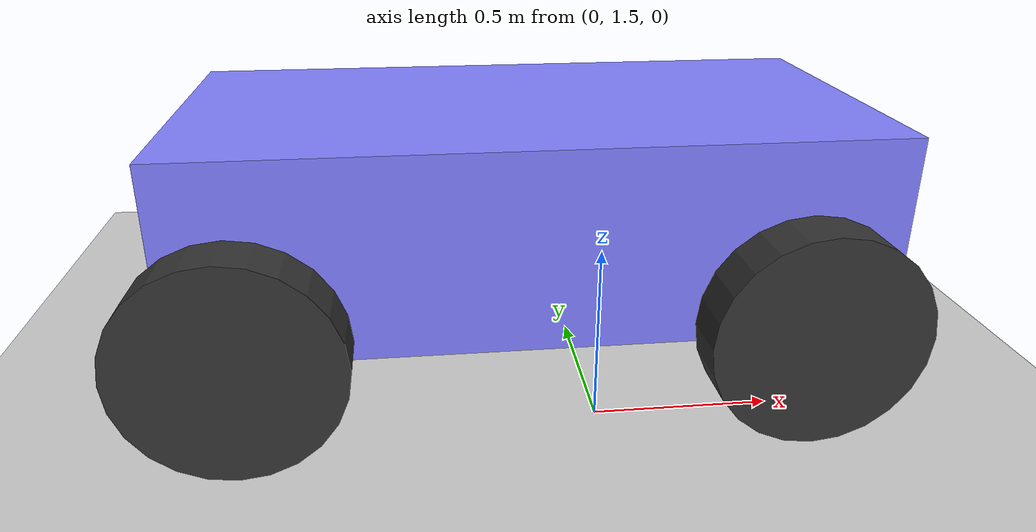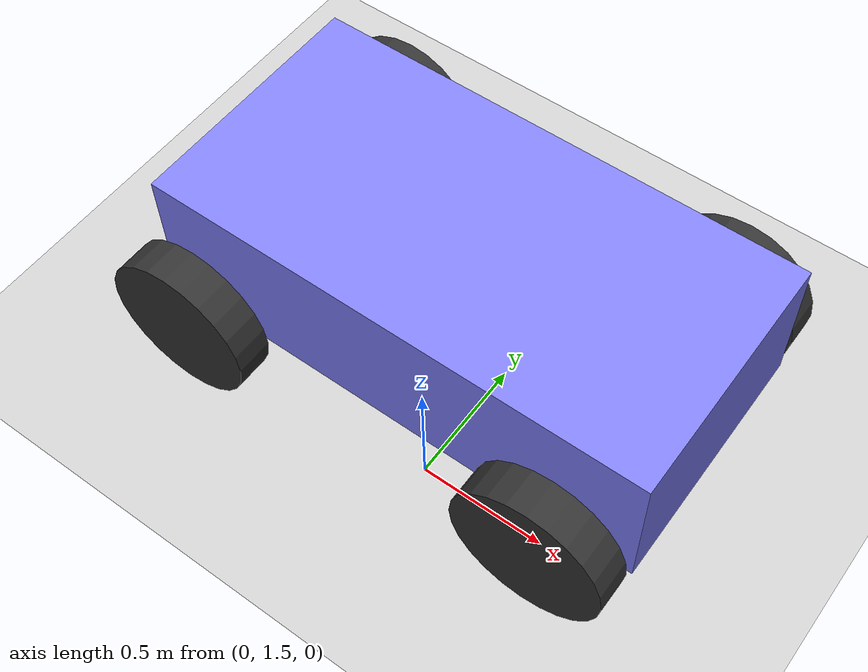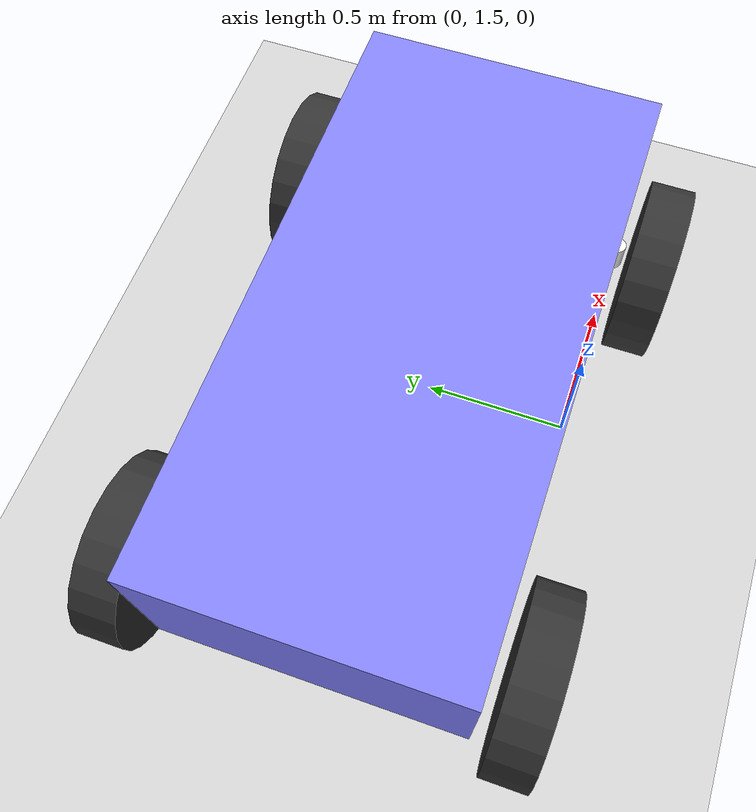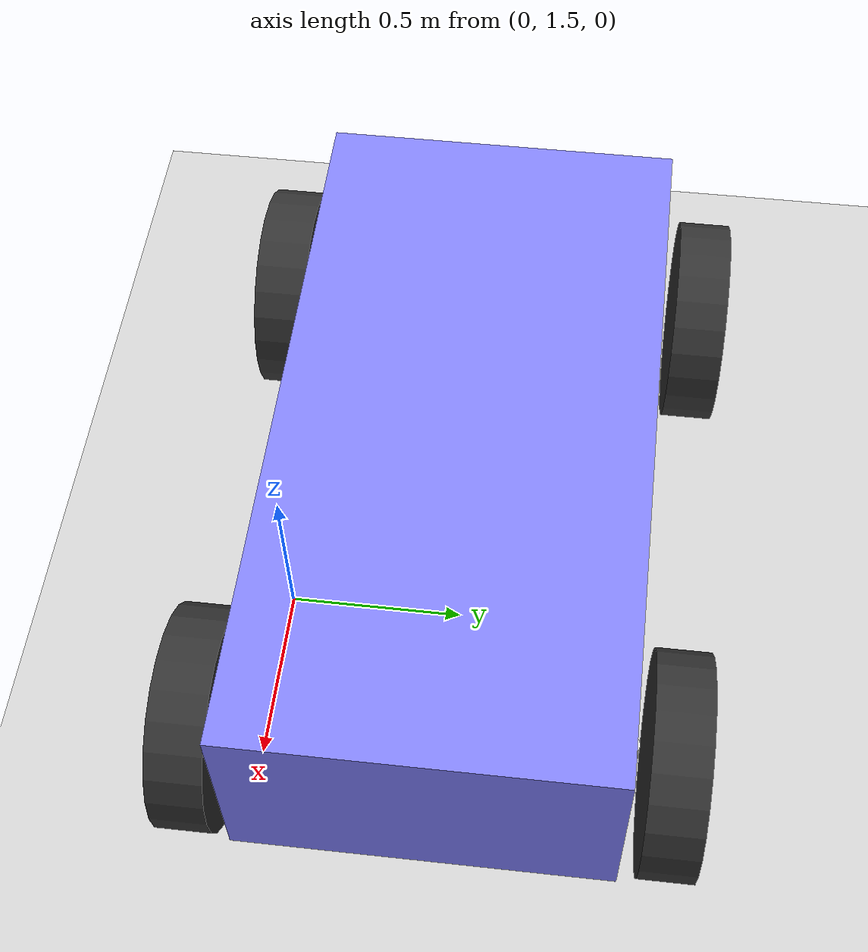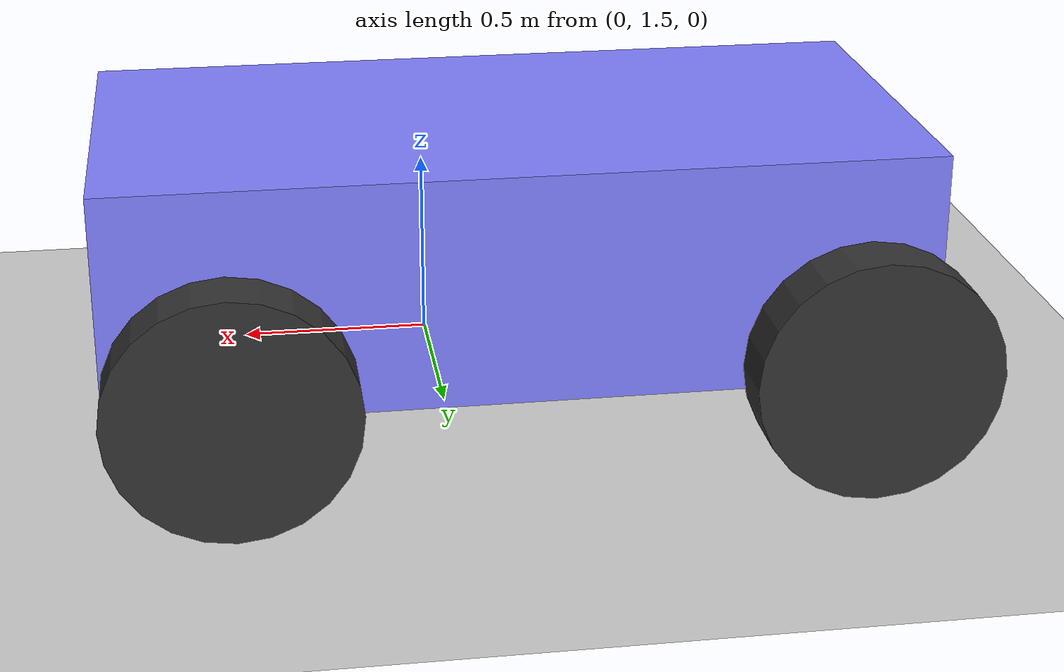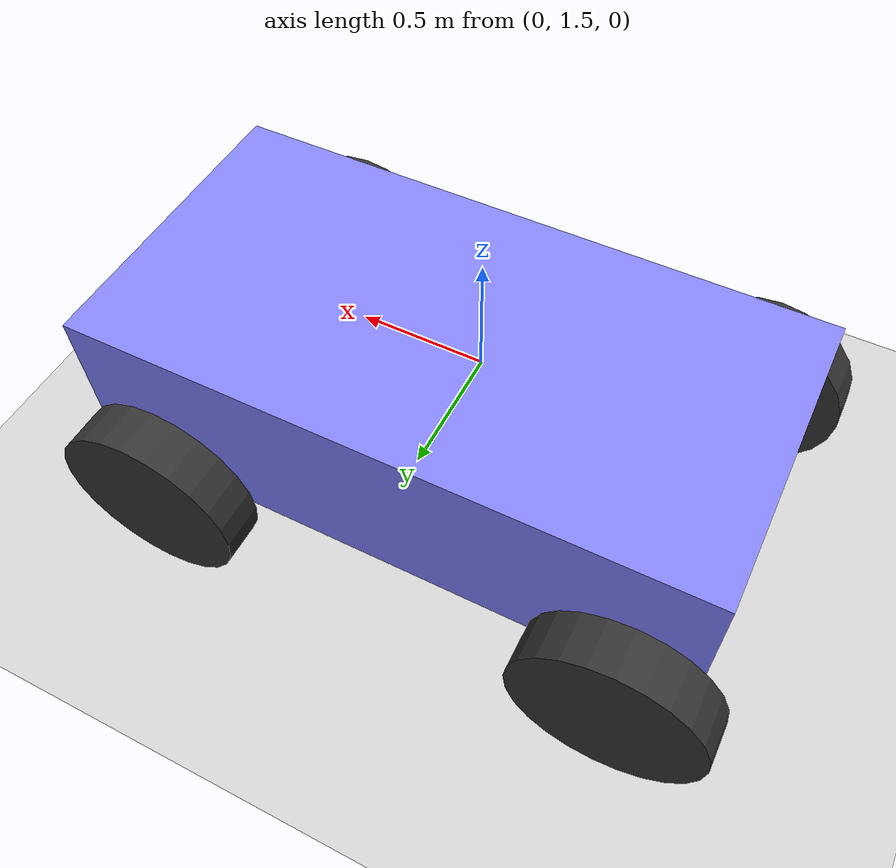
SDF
<sdf version='1.10'>
  <world name='ackermann_steering'>
    <physics name='1ms' type='ignored'>
      <max_step_size>0.001</max_step_size>
      <real_time_factor>1</real_time_factor>
      <real_time_update_rate>1000</real_time_update_rate>
    </physics>
    <plugin name='gz::sim::systems::Physics' filename='gz-sim-physics-system'/>
    <plugin name='gz::sim::systems::UserCommands' filename='gz-sim-user-commands-system'/>
    <plugin name='gz::sim::systems::SceneBroadcaster' filename='gz-sim-scene-broadcaster-system'/>
    <gravity>0 0 -9.8000000000000007</gravity>
    <magnetic_field>5.5644999999999998e-06 2.2875799999999999e-05 -4.2388400000000002e-05</magnetic_field>
    <atmosphere type='adiabatic'/>
    <scene>
      <ambient>0.400000006 0.400000006 0.400000006 1</ambient>
      <background>0.699999988 0.699999988 0.699999988 1</background>
      <shadows>true</shadows>
    </scene>
    <model name='ground_plane'>
      <static>true</static>
      <link name='link'>
        <collision name='collision'>
          <geometry>
            <plane>
              <normal>0 0 1</normal>
              <size>100 100</size>
            </plane>
          </geometry>
          <surface>
            <friction>
              <ode>
                <mu>50</mu>
              </ode>
              <bullet>
                <friction>1</friction>
                <rolling_friction>0.10000000000000001</rolling_friction>
              </bullet>
            </friction>
            <bounce/>
            <contact/>
          </surface>
        </collision>
        <visual name='visual'>
          <geometry>
            <plane>
              <normal>0 0 1</normal>
              <size>100 100</size>
            </plane>
          </geometry>
          <material>
            <ambient>0.800000012 0.800000012 0.800000012 1</ambient>
            <diffuse>0.800000012 0.800000012 0.800000012 1</diffuse>
            <specular>0.800000012 0.800000012 0.800000012 1</specular>
          </material>
        </visual>
        <pose>0 0 0 0 0 0</pose>
        <inertial>
          <pose>0 0 0 0 0 0</pose>
          <mass>1</mass>
          <inertia>
            <ixx>1</ixx>
            <ixy>0</ixy>
            <ixz>0</ixz>
            <iyy>1</iyy>
            <iyz>0</iyz>
            <izz>1</izz>
          </inertia>
        </inertial>
        <enable_wind>false</enable_wind>
      </link>
      <pose>0 0 0 0 0 0</pose>
      <self_collide>false</self_collide>
    </model>
    <model name='vehicle_blue'>
      <pose>8.7566537354533125e-11 2.0000000001634253 0.3250071890159123 -5.0518222677781699e-10 3.1007408737803522e-10 -5.1850145662276096e-12</pose>
      <link name='chassis'>
        <pose>-0.15142700000000001 0 0.17499999999999999 0 0 0</pose>
        <inertial>
          <mass>1.14395</mass>
          <inertia>
            <ixx>0.126164</ixx>
            <ixy>0</ixy>
            <ixz>0</ixz>
            <iyy>0.41651899999999997</iyy>
            <iyz>0</iyz>
            <izz>0.481014</izz>
          </inertia>
          <pose>0 0 0 0 0 0</pose>
        </inertial>
        <visual name='visual'>
          <geometry>
            <box>
              <size>2.0114200000000002 1 0.56872599999999995</size>
            </box>
          </geometry>
          <material>
            <ambient>0.5 0.5 1 1</ambient>
            <diffuse>0.5 0.5 1 1</diffuse>
            <specular>0 0 1 1</specular>
          </material>
        </visual>
        <collision name='collision'>
          <geometry>
            <box>
              <size>2.0114200000000002 1 0.56872599999999995</size>
            </box>
          </geometry>
          <surface>
            <friction>
              <ode/>
            </friction>
            <bounce/>
            <contact/>
          </surface>
        </collision>
        <enable_wind>false</enable_wind>
      </link>
      <link name='front_left_wheel'>
        <pose>0.55428299994665509 0.6250290000000005 -0.025000000000000022 -1.5706999999999995 -9.145556648555931e-15 4.2666024538867574e-10</pose>
        <inertial>
          <mass>2</mass>
          <inertia>
            <ixx>0.14583299999999999</ixx>
            <ixy>0</ixy>
            <ixz>0</ixz>
            <iyy>0.14583299999999999</iyy>
            <iyz>0</iyz>
            <izz>0.125</izz>
          </inertia>
          <pose>0 0 0 0 0 0</pose>
        </inertial>
        <visual name='visual'>
          <geometry>
            <cylinder>
              <length>0.14999999999999999</length>
              <radius>0.29999999999999999</radius>
            </cylinder>
          </geometry>
          <material>
            <ambient>0.200000003 0.200000003 0.200000003 1</ambient>
            <diffuse>0.200000003 0.200000003 0.200000003 1</diffuse>
            <specular>0.200000003 0.200000003 0.200000003 1</specular>
          </material>
        </visual>
        <collision name='collision'>
          <geometry>
            <cylinder>
              <length>0.14999999999999999</length>
              <radius>0.29999999999999999</radius>
            </cylinder>
          </geometry>
          <surface>
            <friction>
              <ode>
                <mu>0.5</mu>
                <mu2>1</mu2>
                <fdir1>0 0 1</fdir1>
              </ode>
              <bullet>
                <friction>0.5</friction>
                <friction2>1</friction2>
                <rolling_friction>0.10000000000000001</rolling_friction>
              </bullet>
            </friction>
            <bounce/>
            <contact/>
          </surface>
        </collision>
        <enable_wind>false</enable_wind>
      </link>
      <link name='rear_left_wheel'>
        <pose>-0.95713800000000027 0.62502900000000006 -0.025000000000000022 -1.5706999999999995 -2.9522270427279027e-15 -2.8437852876896552e-19</pose>
        <inertial>
          <mass>2</mass>
          <inertia>
            <ixx>0.14583299999999999</ixx>
            <ixy>0</ixy>
            <ixz>0</ixz>
            <iyy>0.14583299999999999</iyy>
            <iyz>0</iyz>
            <izz>0.125</izz>
          </inertia>
          <pose>0 0 0 0 0 0</pose>
        </inertial>
        <visual name='visual'>
          <geometry>
            <cylinder>
              <length>0.14999999999999999</length>
              <radius>0.29999999999999999</radius>
            </cylinder>
          </geometry>
          <material>
            <ambient>0.200000003 0.200000003 0.200000003 1</ambient>
            <diffuse>0.200000003 0.200000003 0.200000003 1</diffuse>
            <specular>0.200000003 0.200000003 0.200000003 1</specular>
          </material>
        </visual>
        <collision name='collision'>
          <geometry>
            <cylinder>
              <length>0.14999999999999999</length>
              <radius>0.29999999999999999</radius>
            </cylinder>
          </geometry>
          <surface>
            <friction>
              <ode>
                <mu>0.5</mu>
                <mu2>1</mu2>
                <fdir1>0 0 1</fdir1>
              </ode>
              <bullet>
                <friction>0.5</friction>
                <friction2>1</friction2>
                <rolling_friction>0.5</rolling_friction>
              </bullet>
            </friction>
            <bounce/>
            <contact/>
          </surface>
        </collision>
        <enable_wind>false</enable_wind>
      </link>
      <link name='front_right_wheel'>
        <pose>0.55428200005334449 -0.62502900000000028 -0.024999999999999967 -1.5706999999999995 1.6772747307446438e-14 4.2665521801114974e-10</pose>
        <inertial>
          <mass>2</mass>
          <inertia>
            <ixx>0.14583299999999999</ixx>
            <ixy>0</ixy>
            <ixz>0</ixz>
            <iyy>0.14583299999999999</iyy>
            <iyz>0</iyz>
            <izz>0.125</izz>
          </inertia>
          <pose>0 0 0 0 0 0</pose>
        </inertial>
        <visual name='visual'>
          <geometry>
            <cylinder>
              <length>0.14999999999999999</length>
              <radius>0.29999999999999999</radius>
            </cylinder>
          </geometry>
          <material>
            <ambient>0.200000003 0.200000003 0.200000003 1</ambient>
            <diffuse>0.200000003 0.200000003 0.200000003 1</diffuse>
            <specular>0.200000003 0.200000003 0.200000003 1</specular>
          </material>
        </visual>
        <collision name='collision'>
          <geometry>
            <cylinder>
              <length>0.14999999999999999</length>
              <radius>0.29999999999999999</radius>
            </cylinder>
          </geometry>
          <surface>
            <friction>
              <ode>
                <mu>0.5</mu>
                <mu2>1</mu2>
                <fdir1>0 0 1</fdir1>
              </ode>
              <bullet>
                <friction>0.5</friction>
                <friction2>1</friction2>
                <rolling_friction>0.10000000000000001</rolling_friction>
              </bullet>
            </friction>
            <bounce/>
            <contact/>
          </surface>
        </collision>
        <enable_wind>false</enable_wind>
      </link>
      <link name='rear_right_wheel'>
        <pose>-0.95713800000000004 -0.62502899999999983 -0.025000000000000022 -1.5706999999999995 -4.6792353216849343e-15 -4.507357451652125e-19</pose>
        <inertial>
          <mass>2</mass>
          <inertia>
            <ixx>0.14583299999999999</ixx>
            <ixy>0</ixy>
            <ixz>0</ixz>
            <iyy>0.14583299999999999</iyy>
            <iyz>0</iyz>
            <izz>0.125</izz>
          </inertia>
          <pose>0 0 0 0 0 0</pose>
        </inertial>
        <visual name='visual'>
          <geometry>
            <cylinder>
              <length>0.14999999999999999</length>
              <radius>0.29999999999999999</radius>
            </cylinder>
          </geometry>
          <material>
            <ambient>0.200000003 0.200000003 0.200000003 1</ambient>
            <diffuse>0.200000003 0.200000003 0.200000003 1</diffuse>
            <specular>0.200000003 0.200000003 0.200000003 1</specular>
          </material>
        </visual>
        <collision name='collision'>
          <geometry>
            <cylinder>
              <length>0.14999999999999999</length>
              <radius>0.29999999999999999</radius>
            </cylinder>
          </geometry>
          <surface>
            <friction>
              <ode>
                <mu>0.5</mu>
                <mu2>1</mu2>
                <fdir1>0 0 1</fdir1>
              </ode>
              <bullet>
                <friction>0.5</friction>
                <friction2>1</friction2>
                <rolling_friction>0.5</rolling_friction>
              </bullet>
            </friction>
            <bounce/>
            <contact/>
          </surface>
        </collision>
        <enable_wind>false</enable_wind>
      </link>
      <link name='front_left_wheel_steering_link'>
        <pose>0.55428300000000008 0.5 0.019999999999999962 4.2777962009110771e-26 4.852013700537918e-26 4.2666024626963793e-10</pose>
        <inertial>
          <mass>0.5</mass>
          <inertia>
            <ixx>0.015299999999999999</ixx>
            <iyy>0.025000000000000001</iyy>
            <izz>0.015299999999999999</izz>
            <ixy>0</ixy>
            <ixz>0</ixz>
            <iyz>0</iyz>
          </inertia>
          <pose>0 0 0 0 0 0</pose>
        </inertial>
        <visual name='steering_link_visual'>
          <pose>0 0 0 0 0 0</pose>
          <geometry>
            <cylinder>
              <length>0.10000000000000001</length>
              <radius>0.029999999999999999</radius>
            </cylinder>
          </geometry>
          <material>
            <ambient>1 1 1 1</ambient>
            <diffuse>1 1 1 1</diffuse>
          </material>
        </visual>
        <enable_wind>false</enable_wind>
      </link>
      <link name='front_right_wheel_steering_link'>
        <pose>0.55428300000000008 -0.5 0.019999999999999962 -4.5858317481205403e-27 -5.4877439555714035e-26 4.2665521639548491e-10</pose>
        <inertial>
          <mass>0.5</mass>
          <inertia>
            <ixx>0.015299999999999999</ixx>
            <iyy>0.025000000000000001</iyy>
            <izz>0.015299999999999999</izz>
            <ixy>0</ixy>
            <ixz>0</ixz>
            <iyz>0</iyz>
          </inertia>
          <pose>0 0 0 0 0 0</pose>
        </inertial>
        <visual name='steering_link_visual'>
          <pose>0 0 0 0 0 0</pose>
          <geometry>
            <cylinder>
              <length>0.10000000000000001</length>
              <radius>0.029999999999999999</radius>
            </cylinder>
          </geometry>
          <material>
            <ambient>1 1 1 1</ambient>
            <diffuse>1 1 1 1</diffuse>
          </material>
        </visual>
        <enable_wind>false</enable_wind>
      </link>
      <joint name='front_left_wheel_steering_joint' type='revolute'>
        <child>front_left_wheel_steering_link</child>
        <parent>chassis</parent>
        <axis>
          <xyz>0 0 1</xyz>
          <limit>
            <lower>-0.59999999999999998</lower>
            <upper>0.59999999999999998</upper>
            <effort>25</effort>
            <velocity>1</velocity>
            <stiffness>100000000</stiffness>
            <dissipation>1</dissipation>
          </limit>
          <dynamics>
            <spring_reference>0</spring_reference>
            <spring_stiffness>0</spring_stiffness>
            <damping>0</damping>
            <friction>0</friction>
          </dynamics>
        </axis>
        <pose>0 0 0 0 0 0</pose>
      </joint>
      <joint name='front_right_wheel_steering_joint' type='revolute'>
        <parent>chassis</parent>
        <child>front_right_wheel_steering_link</child>
        <axis>
          <xyz>0 0 1</xyz>
          <limit>
            <lower>-0.59999999999999998</lower>
            <upper>0.59999999999999998</upper>
            <effort>25</effort>
            <velocity>1</velocity>
            <stiffness>100000000</stiffness>
            <dissipation>1</dissipation>
          </limit>
          <dynamics>
            <spring_reference>0</spring_reference>
            <spring_stiffness>0</spring_stiffness>
            <damping>0</damping>
            <friction>0</friction>
          </dynamics>
        </axis>
        <pose>0 0 0 0 0 0</pose>
      </joint>
      <joint name='front_left_wheel_joint' type='revolute'>
        <parent>front_left_wheel_steering_link</parent>
        <child>front_left_wheel</child>
        <axis>
          <xyz>0 0 1</xyz>
          <limit>
            <lower>-1.7976900000000001e+308</lower>
            <upper>1.7976900000000001e+308</upper>
            <effort>inf</effort>
            <velocity>inf</velocity>
            <stiffness>100000000</stiffness>
            <dissipation>1</dissipation>
          </limit>
          <dynamics>
            <spring_reference>0</spring_reference>
            <spring_stiffness>0</spring_stiffness>
            <damping>0</damping>
            <friction>0</friction>
          </dynamics>
        </axis>
        <pose>0 0 1.11022e-16 0 0 0</pose>
      </joint>
      <joint name='front_right_wheel_joint' type='revolute'>
        <parent>front_right_wheel_steering_link</parent>
        <child>front_right_wheel</child>
        <axis>
          <xyz>0 0 1</xyz>
          <limit>
            <lower>-1.7976900000000001e+308</lower>
            <upper>1.7976900000000001e+308</upper>
            <effort>inf</effort>
            <velocity>inf</velocity>
            <stiffness>100000000</stiffness>
            <dissipation>1</dissipation>
          </limit>
          <dynamics>
            <spring_reference>0</spring_reference>
            <spring_stiffness>0</spring_stiffness>
            <damping>0</damping>
            <friction>0</friction>
          </dynamics>
        </axis>
        <pose>-1.11022e-16 0 0 0 0 0</pose>
      </joint>
      <joint name='rear_left_wheel_joint' type='revolute'>
        <parent>chassis</parent>
        <child>rear_left_wheel</child>
        <axis>
          <xyz>0 0 1</xyz>
          <limit>
            <lower>-1.7976900000000001e+308</lower>
            <upper>1.7976900000000001e+308</upper>
            <effort>inf</effort>
            <velocity>inf</velocity>
            <stiffness>100000000</stiffness>
            <dissipation>1</dissipation>
          </limit>
          <dynamics>
            <spring_reference>0</spring_reference>
            <spring_stiffness>0</spring_stiffness>
            <damping>0</damping>
            <friction>0</friction>
          </dynamics>
        </axis>
        <pose>0 0 1.11022e-16 0 0 0</pose>
      </joint>
      <joint name='rear_right_wheel_joint' type='revolute'>
        <parent>chassis</parent>
        <child>rear_right_wheel</child>
        <axis>
          <xyz>0 0 1</xyz>
          <limit>
            <lower>-1.7976900000000001e+308</lower>
            <upper>1.7976900000000001e+308</upper>
            <effort>inf</effort>
            <velocity>inf</velocity>
            <stiffness>100000000</stiffness>
            <dissipation>1</dissipation>
          </limit>
          <dynamics>
            <spring_reference>0</spring_reference>
            <spring_stiffness>0</spring_stiffness>
            <damping>0</damping>
            <friction>0</friction>
          </dynamics>
        </axis>
        <pose>0 0 0 0 0 0</pose>
      </joint>
      <plugin name='gz::sim::systems::AckermannSteering' filename='gz-sim-ackermann-steering-system'>
        <left_joint>front_left_wheel_joint</left_joint>
        <left_joint>rear_left_wheel_joint</left_joint>
        <right_joint>front_right_wheel_joint</right_joint>
        <right_joint>rear_right_wheel_joint</right_joint>
        <left_steering_joint>front_left_wheel_steering_joint</left_steering_joint>
        <right_steering_joint>front_right_wheel_steering_joint</right_steering_joint>
        <kingpin_width>1.0</kingpin_width>
        <steering_limit>0.5</steering_limit>
        <wheel_base>1.0</wheel_base>
        <wheel_separation>1.25</wheel_separation>
        <wheel_radius>0.3</wheel_radius>
        <min_velocity>-1</min_velocity>
        <max_velocity>1</max_velocity>
        <min_acceleration>-3</min_acceleration>
        <max_acceleration>3</max_acceleration>
      </plugin>
      <static>false</static>
      <self_collide>false</self_collide>
    </model>
    <light name='sun' type='directional'>
      <pose>0 0 10 0 0 0</pose>
      <cast_shadows>true</cast_shadows>
      <intensity>1</intensity>
      <direction>-0.5 0.10000000000000001 -0.90000000000000002</direction>
      <diffuse>1 1 1 1</diffuse>
      <specular>0.5 0.5 0.5 1</specular>
      <attenuation>
        <range>1000</range>
        <linear>0.0099999997764825821</linear>
        <constant>0.89999997615814209</constant>
        <quadratic>0.0010000000474974513</quadratic>
      </attenuation>
      <spot>
        <inner_angle>0</inner_angle>
        <outer_angle>0</outer_angle>
        <falloff>0</falloff>
      </spot>
    </light>
  </world>
</sdf>
